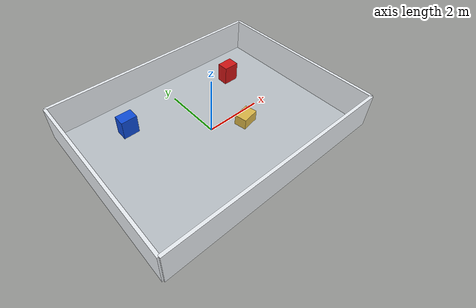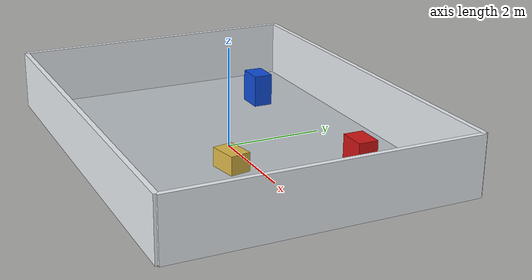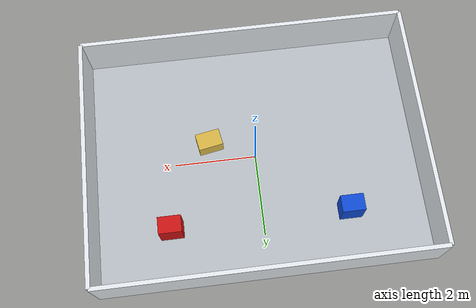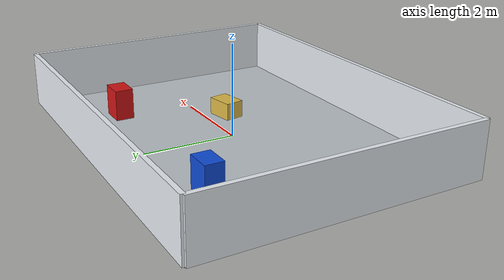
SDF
<?xml version="1.0"?>
<sdf version="1.8">
  <world name="flyto_turtlebot3_fidelity">
    <physics name="flyto_1ms_ode" type="ode">
      <max_step_size>0.001</max_step_size>
      <real_time_factor>1.0</real_time_factor>
      <real_time_update_rate>1000</real_time_update_rate>
      <ode>
        <solver>
          <type>quick</type>
          <iters>150</iters>
          <sor>1.4</sor>
          <use_dynamic_moi_rescaling>true</use_dynamic_moi_rescaling>
        </solver>
        <constraints>
          <cfm>0.00001</cfm>
          <erp>0.2</erp>
          <contact_max_correcting_vel>2.0</contact_max_correcting_vel>
          <contact_surface_layer>0.001</contact_surface_layer>
        </constraints>
      </ode>
    </physics>

    <gravity>0 0 -9.80665</gravity>
    <magnetic_field>5.64e-6 22.3e-6 -42.8e-6</magnetic_field>

    <plugin filename="gz-sim-physics-system" name="gz::sim::systems::Physics"/>
    <plugin filename="gz-sim-user-commands-system"
            name="gz::sim::systems::UserCommands"/>
    <plugin filename="gz-sim-scene-broadcaster-system"
            name="gz::sim::systems::SceneBroadcaster"/>
    <plugin filename="gz-sim-sensors-system" name="gz::sim::systems::Sensors">
      <render_engine>ogre2</render_engine>
    </plugin>
    <plugin filename="gz-sim-imu-system" name="gz::sim::systems::Imu"/>

    <scene>
      <ambient>0.55 0.55 0.58 1</ambient>
      <background>0.84 0.88 0.92 1</background>
      <shadows>true</shadows>
      <grid>true</grid>
    </scene>

    <light name="ceiling_key" type="directional">
      <cast_shadows>true</cast_shadows>
      <pose>0 0 5 0 0 0</pose>
      <diffuse>0.92 0.92 0.90 1</diffuse>
      <specular>0.18 0.18 0.18 1</specular>
      <direction>-0.35 0.2 -1</direction>
    </light>

    <model name="vinyl_floor">
      <static>true</static>
      <link name="floor_link">
        <collision name="floor_collision">
          <geometry><box><size>8 6 0.04</size></box></geometry>
          <surface>
            <friction>
              <ode><mu>0.72</mu><mu2>0.68</mu2></ode>
            </friction>
            <contact><ode><kp>1000000</kp><kd>100</kd></ode></contact>
          </surface>
        </collision>
        <visual name="floor_visual">
          <geometry><box><size>8 6 0.04</size></box></geometry>
          <material>
            <ambient>0.73 0.76 0.78 1</ambient>
            <diffuse>0.73 0.76 0.78 1</diffuse>
          </material>
        </visual>
      </link>
    </model>

    <model name="north_wall">
      <static>true</static><pose>0 3 0.6 0 0 0</pose>
      <link name="wall">
        <collision name="collision"><geometry><box><size>8 0.10 1.2</size></box></geometry></collision>
        <visual name="visual"><geometry><box><size>8 0.10 1.2</size></box></geometry>
          <material><ambient>0.92 0.94 0.96 1</ambient><diffuse>0.92 0.94 0.96 1</diffuse></material>
        </visual>
      </link>
    </model>
    <model name="south_wall">
      <static>true</static><pose>0 -3 0.6 0 0 0</pose>
      <link name="wall">
        <collision name="collision"><geometry><box><size>8 0.10 1.2</size></box></geometry></collision>
        <visual name="visual"><geometry><box><size>8 0.10 1.2</size></box></geometry>
          <material><ambient>0.92 0.94 0.96 1</ambient><diffuse>0.92 0.94 0.96 1</diffuse></material>
        </visual>
      </link>
    </model>
    <model name="east_wall">
      <static>true</static><pose>4 0 0.6 0 0 0</pose>
      <link name="wall">
        <collision name="collision"><geometry><box><size>0.10 6 1.2</size></box></geometry></collision>
        <visual name="visual"><geometry><box><size>0.10 6 1.2</size></box></geometry>
          <material><ambient>0.92 0.94 0.96 1</ambient><diffuse>0.92 0.94 0.96 1</diffuse></material>
        </visual>
      </link>
    </model>
    <model name="west_wall">
      <static>true</static><pose>-4 0 0.6 0 0 0</pose>
      <link name="wall">
        <collision name="collision"><geometry><box><size>0.10 6 1.2</size></box></geometry></collision>
        <visual name="visual"><geometry><box><size>0.10 6 1.2</size></box></geometry>
          <material><ambient>0.92 0.94 0.96 1</ambient><diffuse>0.92 0.94 0.96 1</diffuse></material>
        </visual>
      </link>
    </model>

    <model name="mission_station_red">
      <static>true</static><pose>2.2 1.65 0.35 0 0 0</pose>
      <link name="station">
        <collision name="collision"><geometry><box><size>0.55 0.40 0.70</size></box></geometry></collision>
        <visual name="visual"><geometry><box><size>0.55 0.40 0.70</size></box></geometry>
          <material><ambient>0.60 0.05 0.05 1</ambient><diffuse>0.82 0.08 0.08 1</diffuse></material>
        </visual>
      </link>
    </model>
    <model name="mission_station_blue">
      <static>true</static><pose>-2.1 1.65 0.35 0 0 0</pose>
      <link name="station">
        <collision name="collision"><geometry><box><size>0.55 0.40 0.70</size></box></geometry></collision>
        <visual name="visual"><geometry><box><size>0.55 0.40 0.70</size></box></geometry>
          <material><ambient>0.04 0.18 0.55 1</ambient><diffuse>0.06 0.30 0.85 1</diffuse></material>
        </visual>
      </link>
    </model>

    <model name="movable_cart">
      <pose>1.1 -0.45 0.20 0 0 0.18</pose>
      <link name="cart">
        <inertial>
          <mass>8.0</mass>
          <inertia><ixx>0.35</ixx><iyy>0.35</iyy><izz>0.45</izz></inertia>
        </inertial>
        <collision name="collision">
          <geometry><box><size>0.60 0.42 0.40</size></box></geometry>
          <surface><friction><ode><mu>0.60</mu><mu2>0.60</mu2></ode></friction></surface>
        </collision>
        <visual name="visual"><geometry><box><size>0.60 0.42 0.40</size></box></geometry>
          <material><ambient>0.68 0.55 0.20 1</ambient><diffuse>0.86 0.72 0.28 1</diffuse></material>
        </visual>
      </link>
    </model>
  </world>
</sdf>
